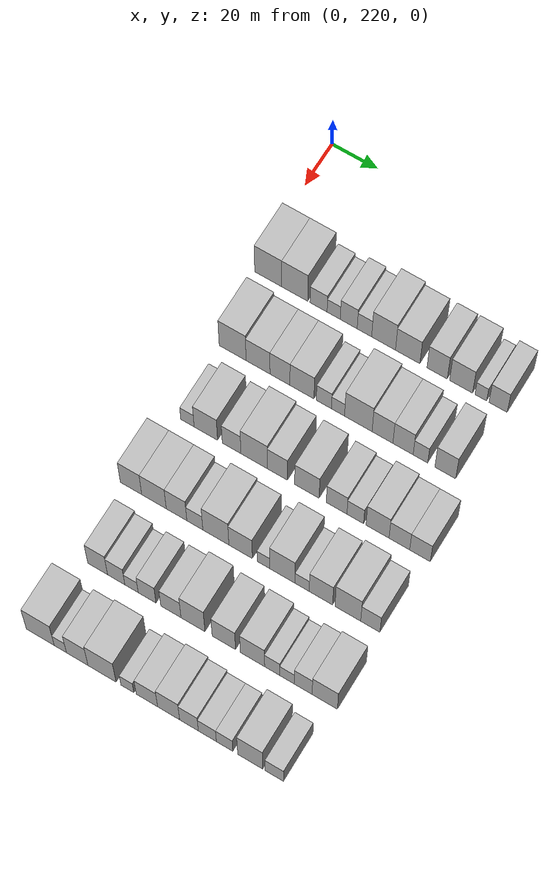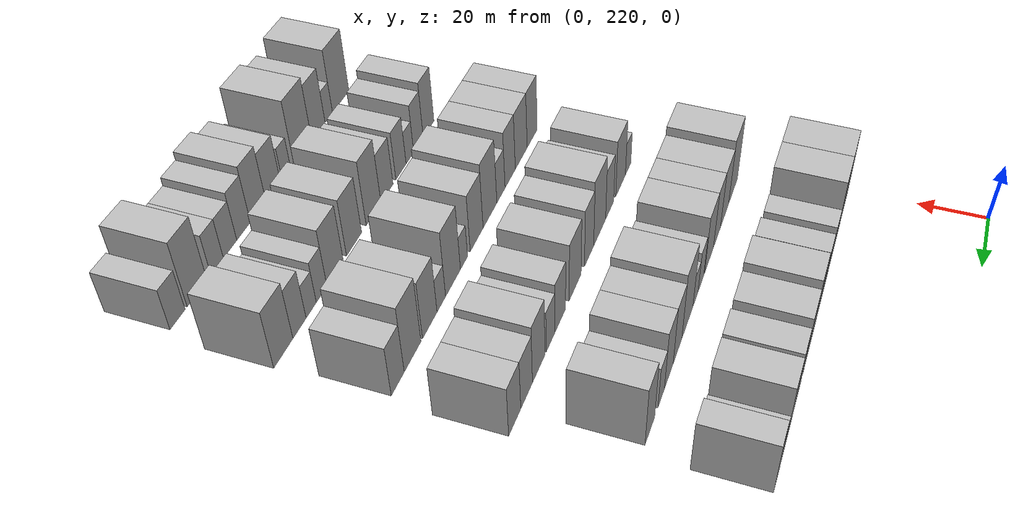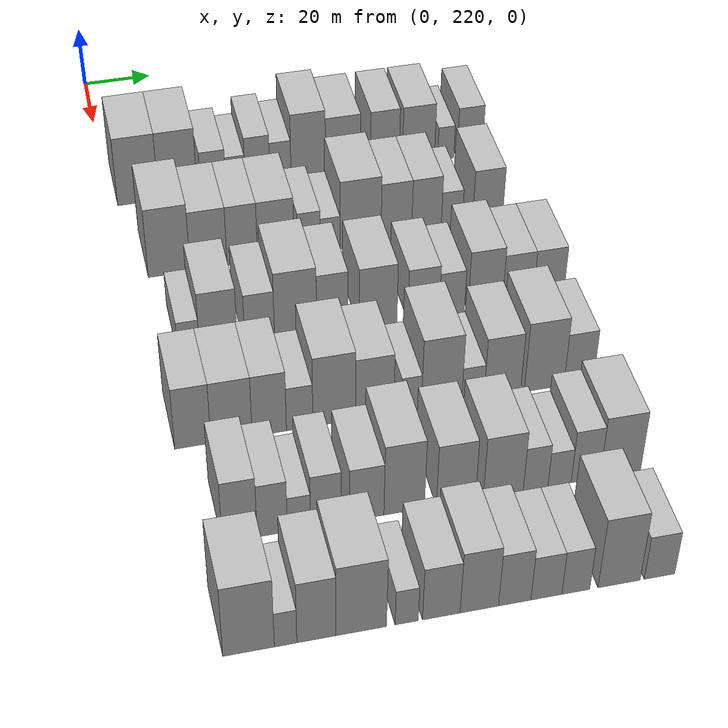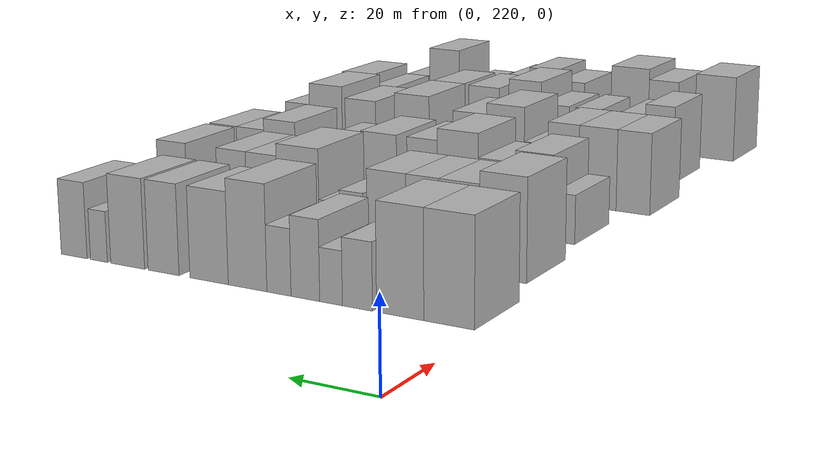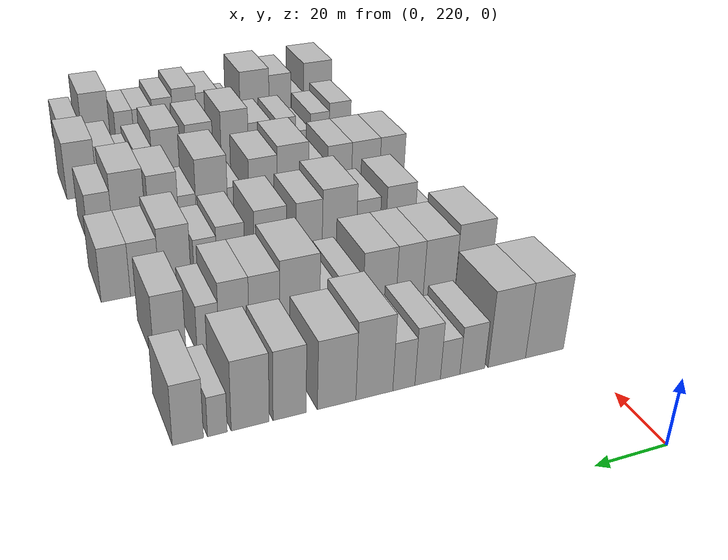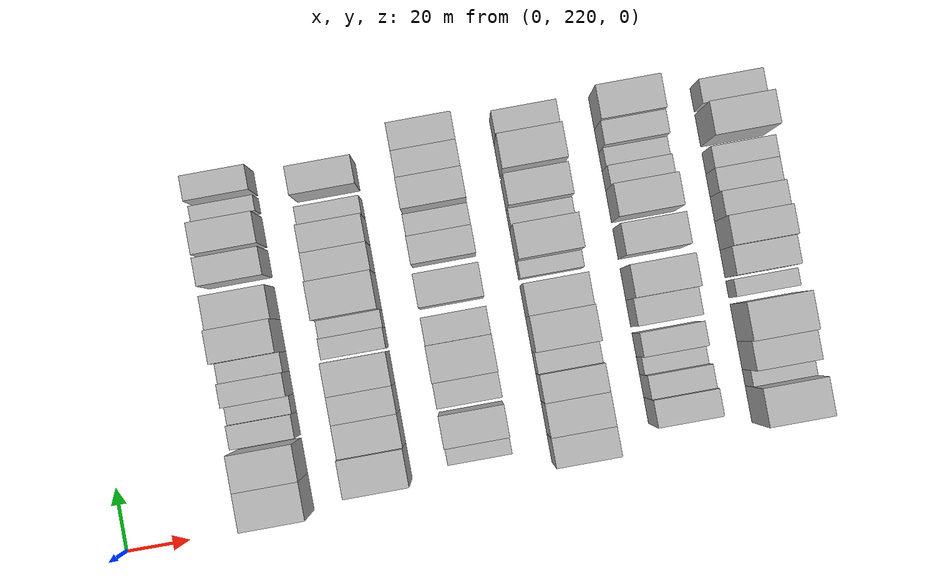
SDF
<sdf version="1.6">
 <world name="default">
  <model name="building_87">
   <static>1</static>
   <pose>50.0000 228.0372 0 0.000000 0.000000 0.000000</pose>
   <link name="link">
    <pose>0 0 12.00 0 0 0</pose>
    <collision name="collision"><geometry><box><size>20.0000 11.7464 24.0000</size></box></geometry></collision>
    <visual name="visual">
     <cast_shadows>0</cast_shadows>
     <geometry><box><size>20.0000 11.7464 24.0000</size></box></geometry>
     <material>
      <script>
       <uri>model://HANNAS_wall/materials/scripts</uri>
       <uri>model://HANNAS_wall/materials/textures</uri>
       <name>vrc/HANNAS_wall</name>
      </script>
     </material>
    </visual>
   </link>
  </model>
  <model name="building_88">
   <static>1</static>
   <pose>50.0000 239.5482 0 0.000000 0.000000 0.000000</pose>
   <link name="link">
    <pose>0 0 12.00 0 0 0</pose>
    <collision name="collision"><geometry><box><size>20.0000 11.2756 24.0000</size></box></geometry></collision>
    <visual name="visual">
     <cast_shadows>0</cast_shadows>
     <geometry><box><size>20.0000 11.2756 24.0000</size></box></geometry>
     <material>
      <script>
       <uri>model://HANNAS_wall/materials/scripts</uri>
       <uri>model://HANNAS_wall/materials/textures</uri>
       <name>vrc/HANNAS_wall</name>
      </script>
     </material>
    </visual>
   </link>
  </model>
  <model name="building_89">
   <static>1</static>
   <pose>50.0000 249.8658 0 0.000000 0.000000 0.000000</pose>
   <link name="link">
    <pose>0 0 7.50 0 0 0</pose>
    <collision name="collision"><geometry><box><size>20.0000 7.3597 15.0000</size></box></geometry></collision>
    <visual name="visual">
     <cast_shadows>0</cast_shadows>
     <geometry><box><size>20.0000 7.3597 15.0000</size></box></geometry>
     <material>
      <script>
       <uri>model://HANNAS_wall/materials/scripts</uri>
       <uri>model://HANNAS_wall/materials/textures</uri>
       <name>vrc/HANNAS_wall</name>
      </script>
     </material>
    </visual>
   </link>
  </model>
  <model name="building_90">
   <static>1</static>
   <pose>50.0000 256.3768 0 0.000000 0.000000 0.000000</pose>
   <link name="link">
    <pose>0 0 6.00 0 0 0</pose>
    <collision name="collision"><geometry><box><size>20.0000 5.6622 12.0000</size></box></geometry></collision>
    <visual name="visual">
     <cast_shadows>0</cast_shadows>
     <geometry><box><size>20.0000 5.6622 12.0000</size></box></geometry>
     <material>
      <script>
       <uri>model://HANNAS_wall/materials/scripts</uri>
       <uri>model://HANNAS_wall/materials/textures</uri>
       <name>vrc/HANNAS_wall</name>
      </script>
     </material>
    </visual>
   </link>
  </model>
  <model name="building_91">
   <static>1</static>
   <pose>50.0000 262.8489 0 0.000000 0.000000 0.000000</pose>
   <link name="link">
    <pose>0 0 9.00 0 0 0</pose>
    <collision name="collision"><geometry><box><size>20.0000 7.2819 18.0000</size></box></geometry></collision>
    <visual name="visual">
     <cast_shadows>0</cast_shadows>
     <geometry><box><size>20.0000 7.2819 18.0000</size></box></geometry>
     <material>
      <script>
       <uri>model://HANNAS_wall/materials/scripts</uri>
       <uri>model://HANNAS_wall/materials/textures</uri>
       <name>vrc/HANNAS_wall</name>
      </script>
     </material>
    </visual>
   </link>
  </model>
  <model name="building_92">
   <static>1</static>
   <pose>50.0000 269.6040 0 0.000000 0.000000 0.000000</pose>
   <link name="link">
    <pose>0 0 7.50 0 0 0</pose>
    <collision name="collision"><geometry><box><size>20.0000 6.2282 15.0000</size></box></geometry></collision>
    <visual name="visual">
     <cast_shadows>0</cast_shadows>
     <geometry><box><size>20.0000 6.2282 15.0000</size></box></geometry>
     <material>
      <script>
       <uri>model://HANNAS_wall/materials/scripts</uri>
       <uri>model://HANNAS_wall/materials/textures</uri>
       <name>vrc/HANNAS_wall</name>
      </script>
     </material>
    </visual>
   </link>
  </model>
  <model name="building_93">
   <static>1</static>
   <pose>50.0000 277.8182 0 0.000000 0.000000 0.000000</pose>
   <link name="link">
    <pose>0 0 12.00 0 0 0</pose>
    <collision name="collision"><geometry><box><size>20.0000 10.2004 24.0000</size></box></geometry></collision>
    <visual name="visual">
     <cast_shadows>0</cast_shadows>
     <geometry><box><size>20.0000 10.2004 24.0000</size></box></geometry>
     <material>
      <script>
       <uri>model://HANNAS_wall/materials/scripts</uri>
       <uri>model://HANNAS_wall/materials/textures</uri>
       <name>vrc/HANNAS_wall</name>
      </script>
     </material>
    </visual>
   </link>
  </model>
  <model name="building_94">
   <static>1</static>
   <pose>50.0000 288.1135 0 0.000000 0.000000 0.000000</pose>
   <link name="link">
    <pose>0 0 10.50 0 0 0</pose>
    <collision name="collision"><geometry><box><size>20.0000 10.3901 21.0000</size></box></geometry></collision>
    <visual name="visual">
     <cast_shadows>0</cast_shadows>
     <geometry><box><size>20.0000 10.3901 21.0000</size></box></geometry>
     <material>
      <script>
       <uri>model://HANNAS_wall/materials/scripts</uri>
       <uri>model://HANNAS_wall/materials/textures</uri>
       <name>vrc/HANNAS_wall</name>
      </script>
     </material>
    </visual>
   </link>
  </model>
  <model name="building_95">
   <static>1</static>
   <pose>50.0000 300.6220 0 0.000000 0.000000 0.000000</pose>
   <link name="link">
    <pose>0 0 10.50 0 0 0</pose>
    <collision name="collision"><geometry><box><size>20.0000 8.6270 21.0000</size></box></geometry></collision>
    <visual name="visual">
     <cast_shadows>0</cast_shadows>
     <geometry><box><size>20.0000 8.6270 21.0000</size></box></geometry>
     <material>
      <script>
       <uri>model://HANNAS_wall/materials/scripts</uri>
       <uri>model://HANNAS_wall/materials/textures</uri>
       <name>vrc/HANNAS_wall</name>
      </script>
     </material>
    </visual>
   </link>
  </model>
  <model name="building_96">
   <static>1</static>
   <pose>50.0000 310.7850 0 0.000000 0.000000 0.000000</pose>
   <link name="link">
    <pose>0 0 10.50 0 0 0</pose>
    <collision name="collision"><geometry><box><size>20.0000 9.6990 21.0000</size></box></geometry></collision>
    <visual name="visual">
     <cast_shadows>0</cast_shadows>
     <geometry><box><size>20.0000 9.6990 21.0000</size></box></geometry>
     <material>
      <script>
       <uri>model://HANNAS_wall/materials/scripts</uri>
       <uri>model://HANNAS_wall/materials/textures</uri>
       <name>vrc/HANNAS_wall</name>
      </script>
     </material>
    </visual>
   </link>
  </model>
  <model name="building_97">
   <static>1</static>
   <pose>50.0000 319.1039 0 0.000000 0.000000 0.000000</pose>
   <link name="link">
    <pose>0 0 6.00 0 0 0</pose>
    <collision name="collision"><geometry><box><size>20.0000 4.9386 12.0000</size></box></geometry></collision>
    <visual name="visual">
     <cast_shadows>0</cast_shadows>
     <geometry><box><size>20.0000 4.9386 12.0000</size></box></geometry>
     <material>
      <script>
       <uri>model://HANNAS_wall/materials/scripts</uri>
       <uri>model://HANNAS_wall/materials/textures</uri>
       <name>vrc/HANNAS_wall</name>
      </script>
     </material>
    </visual>
   </link>
  </model>
  <model name="building_98">
   <static>1</static>
   <pose>50.0000 326.4090 0 0.000000 0.000000 0.000000</pose>
   <link name="link">
    <pose>0 0 9.00 0 0 0</pose>
    <collision name="collision"><geometry><box><size>20.0000 7.6716 18.0000</size></box></geometry></collision>
    <visual name="visual">
     <cast_shadows>0</cast_shadows>
     <geometry><box><size>20.0000 7.6716 18.0000</size></box></geometry>
     <material>
      <script>
       <uri>model://HANNAS_wall/materials/scripts</uri>
       <uri>model://HANNAS_wall/materials/textures</uri>
       <name>vrc/HANNAS_wall</name>
      </script>
     </material>
    </visual>
   </link>
  </model>
  <model name="building_201">
   <static>1</static>
   <pose>82.0000 232.1351 0 0.000000 0.000000 0.000000</pose>
   <link name="link">
    <pose>0 0 12.00 0 0 0</pose>
    <collision name="collision"><geometry><box><size>20.0000 11.6030 24.0000</size></box></geometry></collision>
    <visual name="visual">
     <cast_shadows>0</cast_shadows>
     <geometry><box><size>20.0000 11.6030 24.0000</size></box></geometry>
     <material>
      <script>
       <uri>model://HANNAS_wall/materials/scripts</uri>
       <uri>model://HANNAS_wall/materials/textures</uri>
       <name>vrc/HANNAS_wall</name>
      </script>
     </material>
    </visual>
   </link>
  </model>
  <model name="building_202">
   <static>1</static>
   <pose>82.0000 243.0815 0 0.000000 0.000000 0.000000</pose>
   <link name="link">
    <pose>0 0 10.50 0 0 0</pose>
    <collision name="collision"><geometry><box><size>20.0000 10.2899 21.0000</size></box></geometry></collision>
    <visual name="visual">
     <cast_shadows>0</cast_shadows>
     <geometry><box><size>20.0000 10.2899 21.0000</size></box></geometry>
     <material>
      <script>
       <uri>model://HANNAS_wall/materials/scripts</uri>
       <uri>model://HANNAS_wall/materials/textures</uri>
       <name>vrc/HANNAS_wall</name>
      </script>
     </material>
    </visual>
   </link>
  </model>
  <model name="building_203">
   <static>1</static>
   <pose>82.0000 252.5067 0 0.000000 0.000000 0.000000</pose>
   <link name="link">
    <pose>0 0 10.50 0 0 0</pose>
    <collision name="collision"><geometry><box><size>20.0000 8.5605 21.0000</size></box></geometry></collision>
    <visual name="visual">
     <cast_shadows>0</cast_shadows>
     <geometry><box><size>20.0000 8.5605 21.0000</size></box></geometry>
     <material>
      <script>
       <uri>model://HANNAS_wall/materials/scripts</uri>
       <uri>model://HANNAS_wall/materials/textures</uri>
       <name>vrc/HANNAS_wall</name>
      </script>
     </material>
    </visual>
   </link>
  </model>
  <model name="building_204">
   <static>1</static>
   <pose>82.0000 261.9336 0 0.000000 0.000000 0.000000</pose>
   <link name="link">
    <pose>0 0 10.50 0 0 0</pose>
    <collision name="collision"><geometry><box><size>20.0000 10.2932 21.0000</size></box></geometry></collision>
    <visual name="visual">
     <cast_shadows>0</cast_shadows>
     <geometry><box><size>20.0000 10.2932 21.0000</size></box></geometry>
     <material>
      <script>
       <uri>model://HANNAS_wall/materials/scripts</uri>
       <uri>model://HANNAS_wall/materials/textures</uri>
       <name>vrc/HANNAS_wall</name>
      </script>
     </material>
    </visual>
   </link>
  </model>
  <model name="building_205">
   <static>1</static>
   <pose>82.0000 271.3000 0 0.000000 0.000000 0.000000</pose>
   <link name="link">
    <pose>0 0 7.50 0 0 0</pose>
    <collision name="collision"><geometry><box><size>20.0000 6.4396 15.0000</size></box></geometry></collision>
    <visual name="visual">
     <cast_shadows>0</cast_shadows>
     <geometry><box><size>20.0000 6.4396 15.0000</size></box></geometry>
     <material>
      <script>
       <uri>model://HANNAS_wall/materials/scripts</uri>
       <uri>model://HANNAS_wall/materials/textures</uri>
       <name>vrc/HANNAS_wall</name>
      </script>
     </material>
    </visual>
   </link>
  </model>
  <model name="building_206">
   <static>1</static>
   <pose>82.0000 277.3047 0 0.000000 0.000000 0.000000</pose>
   <link name="link">
    <pose>0 0 6.00 0 0 0</pose>
    <collision name="collision"><geometry><box><size>20.0000 5.5699 12.0000</size></box></geometry></collision>
    <visual name="visual">
     <cast_shadows>0</cast_shadows>
     <geometry><box><size>20.0000 5.5699 12.0000</size></box></geometry>
     <material>
      <script>
       <uri>model://HANNAS_wall/materials/scripts</uri>
       <uri>model://HANNAS_wall/materials/textures</uri>
       <name>vrc/HANNAS_wall</name>
      </script>
     </material>
    </visual>
   </link>
  </model>
  <model name="building_207">
   <static>1</static>
   <pose>82.0000 285.9365 0 0.000000 0.000000 0.000000</pose>
   <link name="link">
    <pose>0 0 12.00 0 0 0</pose>
    <collision name="collision"><geometry><box><size>20.0000 11.6936 24.0000</size></box></geometry></collision>
    <visual name="visual">
     <cast_shadows>0</cast_shadows>
     <geometry><box><size>20.0000 11.6936 24.0000</size></box></geometry>
     <material>
      <script>
       <uri>model://HANNAS_wall/materials/scripts</uri>
       <uri>model://HANNAS_wall/materials/textures</uri>
       <name>vrc/HANNAS_wall</name>
      </script>
     </material>
    </visual>
   </link>
  </model>
  <model name="building_208">
   <static>1</static>
   <pose>82.0000 296.1773 0 0.000000 0.000000 0.000000</pose>
   <link name="link">
    <pose>0 0 10.50 0 0 0</pose>
    <collision name="collision"><geometry><box><size>20.0000 8.7882 21.0000</size></box></geometry></collision>
    <visual name="visual">
     <cast_shadows>0</cast_shadows>
     <geometry><box><size>20.0000 8.7882 21.0000</size></box></geometry>
     <material>
      <script>
       <uri>model://HANNAS_wall/materials/scripts</uri>
       <uri>model://HANNAS_wall/materials/textures</uri>
       <name>vrc/HANNAS_wall</name>
      </script>
     </material>
    </visual>
   </link>
  </model>
  <model name="building_209">
   <static>1</static>
   <pose>82.0000 304.8426 0 0.000000 0.000000 0.000000</pose>
   <link name="link">
    <pose>0 0 10.50 0 0 0</pose>
    <collision name="collision"><geometry><box><size>20.0000 8.5423 21.0000</size></box></geometry></collision>
    <visual name="visual">
     <cast_shadows>0</cast_shadows>
     <geometry><box><size>20.0000 8.5423 21.0000</size></box></geometry>
     <material>
      <script>
       <uri>model://HANNAS_wall/materials/scripts</uri>
       <uri>model://HANNAS_wall/materials/textures</uri>
       <name>vrc/HANNAS_wall</name>
      </script>
     </material>
    </visual>
   </link>
  </model>
  <model name="building_210">
   <static>1</static>
   <pose>82.0000 312.1706 0 0.000000 0.000000 0.000000</pose>
   <link name="link">
    <pose>0 0 7.50 0 0 0</pose>
    <collision name="collision"><geometry><box><size>20.0000 6.1138 15.0000</size></box></geometry></collision>
    <visual name="visual">
     <cast_shadows>0</cast_shadows>
     <geometry><box><size>20.0000 6.1138 15.0000</size></box></geometry>
     <material>
      <script>
       <uri>model://HANNAS_wall/materials/scripts</uri>
       <uri>model://HANNAS_wall/materials/textures</uri>
       <name>vrc/HANNAS_wall</name>
      </script>
     </material>
    </visual>
   </link>
  </model>
  <model name="building_211">
   <static>1</static>
   <pose>82.0000 322.5946 0 0.000000 0.000000 0.000000</pose>
   <link name="link">
    <pose>0 0 10.50 0 0 0</pose>
    <collision name="collision"><geometry><box><size>20.0000 8.7343 21.0000</size></box></geometry></collision>
    <visual name="visual">
     <cast_shadows>0</cast_shadows>
     <geometry><box><size>20.0000 8.7343 21.0000</size></box></geometry>
     <material>
      <script>
       <uri>model://HANNAS_wall/materials/scripts</uri>
       <uri>model://HANNAS_wall/materials/textures</uri>
       <name>vrc/HANNAS_wall</name>
      </script>
     </material>
    </visual>
   </link>
  </model>
  <model name="building_320">
   <static>1</static>
   <pose>114.0000 232.3942 0 0.000000 0.000000 0.000000</pose>
   <link name="link">
    <pose>0 0 6.00 0 0 0</pose>
    <collision name="collision"><geometry><box><size>20.0000 5.7517 12.0000</size></box></geometry></collision>
    <visual name="visual">
     <cast_shadows>0</cast_shadows>
     <geometry><box><size>20.0000 5.7517 12.0000</size></box></geometry>
     <material>
      <script>
       <uri>model://HANNAS_wall/materials/scripts</uri>
       <uri>model://HANNAS_wall/materials/textures</uri>
       <name>vrc/HANNAS_wall</name>
      </script>
     </material>
    </visual>
   </link>
  </model>
  <model name="building_321">
   <static>1</static>
   <pose>114.0000 240.2944 0 0.000000 0.000000 0.000000</pose>
   <link name="link">
    <pose>0 0 10.50 0 0 0</pose>
    <collision name="collision"><geometry><box><size>20.0000 10.0488 21.0000</size></box></geometry></collision>
    <visual name="visual">
     <cast_shadows>0</cast_shadows>
     <geometry><box><size>20.0000 10.0488 21.0000</size></box></geometry>
     <material>
      <script>
       <uri>model://HANNAS_wall/materials/scripts</uri>
       <uri>model://HANNAS_wall/materials/textures</uri>
       <name>vrc/HANNAS_wall</name>
      </script>
     </material>
    </visual>
   </link>
  </model>
  <model name="building_322">
   <static>1</static>
   <pose>114.0000 251.2999 0 0.000000 0.000000 0.000000</pose>
   <link name="link">
    <pose>0 0 9.00 0 0 0</pose>
    <collision name="collision"><geometry><box><size>20.0000 7.9621 18.0000</size></box></geometry></collision>
    <visual name="visual">
     <cast_shadows>0</cast_shadows>
     <geometry><box><size>20.0000 7.9621 18.0000</size></box></geometry>
     <material>
      <script>
       <uri>model://HANNAS_wall/materials/scripts</uri>
       <uri>model://HANNAS_wall/materials/textures</uri>
       <name>vrc/HANNAS_wall</name>
      </script>
     </material>
    </visual>
   </link>
  </model>
  <model name="building_323">
   <static>1</static>
   <pose>114.0000 260.9401 0 0.000000 0.000000 0.000000</pose>
   <link name="link">
    <pose>0 0 12.00 0 0 0</pose>
    <collision name="collision"><geometry><box><size>20.0000 11.3183 24.0000</size></box></geometry></collision>
    <visual name="visual">
     <cast_shadows>0</cast_shadows>
     <geometry><box><size>20.0000 11.3183 24.0000</size></box></geometry>
     <material>
      <script>
       <uri>model://HANNAS_wall/materials/scripts</uri>
       <uri>model://HANNAS_wall/materials/textures</uri>
       <name>vrc/HANNAS_wall</name>
      </script>
     </material>
    </visual>
   </link>
  </model>
  <model name="building_324">
   <static>1</static>
   <pose>114.0000 270.8423 0 0.000000 0.000000 0.000000</pose>
   <link name="link">
    <pose>0 0 10.50 0 0 0</pose>
    <collision name="collision"><geometry><box><size>20.0000 8.4861 21.0000</size></box></geometry></collision>
    <visual name="visual">
     <cast_shadows>0</cast_shadows>
     <geometry><box><size>20.0000 8.4861 21.0000</size></box></geometry>
     <material>
      <script>
       <uri>model://HANNAS_wall/materials/scripts</uri>
       <uri>model://HANNAS_wall/materials/textures</uri>
       <name>vrc/HANNAS_wall</name>
      </script>
     </material>
    </visual>
   </link>
  </model>
  <model name="building_325">
   <static>1</static>
   <pose>114.0000 283.2684 0 0.000000 0.000000 0.000000</pose>
   <link name="link">
    <pose>0 0 10.50 0 0 0</pose>
    <collision name="collision"><geometry><box><size>20.0000 10.3661 21.0000</size></box></geometry></collision>
    <visual name="visual">
     <cast_shadows>0</cast_shadows>
     <geometry><box><size>20.0000 10.3661 21.0000</size></box></geometry>
     <material>
      <script>
       <uri>model://HANNAS_wall/materials/scripts</uri>
       <uri>model://HANNAS_wall/materials/textures</uri>
       <name>vrc/HANNAS_wall</name>
      </script>
     </material>
    </visual>
   </link>
  </model>
  <model name="building_326">
   <static>1</static>
   <pose>114.0000 295.7923 0 0.000000 0.000000 0.000000</pose>
   <link name="link">
    <pose>0 0 9.00 0 0 0</pose>
    <collision name="collision"><geometry><box><size>20.0000 8.6818 18.0000</size></box></geometry></collision>
    <visual name="visual">
     <cast_shadows>0</cast_shadows>
     <geometry><box><size>20.0000 8.6818 18.0000</size></box></geometry>
     <material>
      <script>
       <uri>model://HANNAS_wall/materials/scripts</uri>
       <uri>model://HANNAS_wall/materials/textures</uri>
       <name>vrc/HANNAS_wall</name>
      </script>
     </material>
    </visual>
   </link>
  </model>
  <model name="building_327">
   <static>1</static>
   <pose>114.0000 303.6245 0 0.000000 0.000000 0.000000</pose>
   <link name="link">
    <pose>0 0 7.50 0 0 0</pose>
    <collision name="collision"><geometry><box><size>20.0000 6.9824 15.0000</size></box></geometry></collision>
    <visual name="visual">
     <cast_shadows>0</cast_shadows>
     <geometry><box><size>20.0000 6.9824 15.0000</size></box></geometry>
     <material>
      <script>
       <uri>model://HANNAS_wall/materials/scripts</uri>
       <uri>model://HANNAS_wall/materials/textures</uri>
       <name>vrc/HANNAS_wall</name>
      </script>
     </material>
    </visual>
   </link>
  </model>
  <model name="building_328">
   <static>1</static>
   <pose>114.0000 312.9196 0 0.000000 0.000000 0.000000</pose>
   <link name="link">
    <pose>0 0 10.50 0 0 0</pose>
    <collision name="collision"><geometry><box><size>20.0000 9.6079 21.0000</size></box></geometry></collision>
    <visual name="visual">
     <cast_shadows>0</cast_shadows>
     <geometry><box><size>20.0000 9.6079 21.0000</size></box></geometry>
     <material>
      <script>
       <uri>model://HANNAS_wall/materials/scripts</uri>
       <uri>model://HANNAS_wall/materials/textures</uri>
       <name>vrc/HANNAS_wall</name>
      </script>
     </material>
    </visual>
   </link>
  </model>
  <model name="building_329">
   <static>1</static>
   <pose>114.0000 322.0286 0 0.000000 0.000000 0.000000</pose>
   <link name="link">
    <pose>0 0 9.00 0 0 0</pose>
    <collision name="collision"><geometry><box><size>20.0000 8.6103 18.0000</size></box></geometry></collision>
    <visual name="visual">
     <cast_shadows>0</cast_shadows>
     <geometry><box><size>20.0000 8.6103 18.0000</size></box></geometry>
     <material>
      <script>
       <uri>model://HANNAS_wall/materials/scripts</uri>
       <uri>model://HANNAS_wall/materials/textures</uri>
       <name>vrc/HANNAS_wall</name>
      </script>
     </material>
    </visual>
   </link>
  </model>
  <model name="building_330">
   <static>1</static>
   <pose>114.0000 330.6211 0 0.000000 0.000000 0.000000</pose>
   <link name="link">
    <pose>0 0 9.00 0 0 0</pose>
    <collision name="collision"><geometry><box><size>20.0000 8.5748 18.0000</size></box></geometry></collision>
    <visual name="visual">
     <cast_shadows>0</cast_shadows>
     <geometry><box><size>20.0000 8.5748 18.0000</size></box></geometry>
     <material>
      <script>
       <uri>model://HANNAS_wall/materials/scripts</uri>
       <uri>model://HANNAS_wall/materials/textures</uri>
       <name>vrc/HANNAS_wall</name>
      </script>
     </material>
    </visual>
   </link>
  </model>
  <model name="building_439">
   <static>1</static>
   <pose>146.0000 228.2184 0 0.000000 0.000000 0.000000</pose>
   <link name="link">
    <pose>0 0 10.50 0 0 0</pose>
    <collision name="collision"><geometry><box><size>20.0000 9.1493 21.0000</size></box></geometry></collision>
    <visual name="visual">
     <cast_shadows>0</cast_shadows>
     <geometry><box><size>20.0000 9.1493 21.0000</size></box></geometry>
     <material>
      <script>
       <uri>model://HANNAS_wall/materials/scripts</uri>
       <uri>model://HANNAS_wall/materials/textures</uri>
       <name>vrc/HANNAS_wall</name>
      </script>
     </material>
    </visual>
   </link>
  </model>
  <model name="building_440">
   <static>1</static>
   <pose>146.0000 238.0206 0 0.000000 0.000000 0.000000</pose>
   <link name="link">
    <pose>0 0 10.50 0 0 0</pose>
    <collision name="collision"><geometry><box><size>20.0000 10.4551 21.0000</size></box></geometry></collision>
    <visual name="visual">
     <cast_shadows>0</cast_shadows>
     <geometry><box><size>20.0000 10.4551 21.0000</size></box></geometry>
     <material>
      <script>
       <uri>model://HANNAS_wall/materials/scripts</uri>
       <uri>model://HANNAS_wall/materials/textures</uri>
       <name>vrc/HANNAS_wall</name>
      </script>
     </material>
    </visual>
   </link>
  </model>
  <model name="building_441">
   <static>1</static>
   <pose>146.0000 247.6208 0 0.000000 0.000000 0.000000</pose>
   <link name="link">
    <pose>0 0 10.50 0 0 0</pose>
    <collision name="collision"><geometry><box><size>20.0000 8.7454 21.0000</size></box></geometry></collision>
    <visual name="visual">
     <cast_shadows>0</cast_shadows>
     <geometry><box><size>20.0000 8.7454 21.0000</size></box></geometry>
     <material>
      <script>
       <uri>model://HANNAS_wall/materials/scripts</uri>
       <uri>model://HANNAS_wall/materials/textures</uri>
       <name>vrc/HANNAS_wall</name>
      </script>
     </material>
    </visual>
   </link>
  </model>
  <model name="building_442">
   <static>1</static>
   <pose>146.0000 255.3818 0 0.000000 0.000000 0.000000</pose>
   <link name="link">
    <pose>0 0 7.50 0 0 0</pose>
    <collision name="collision"><geometry><box><size>20.0000 6.7765 15.0000</size></box></geometry></collision>
    <visual name="visual">
     <cast_shadows>0</cast_shadows>
     <geometry><box><size>20.0000 6.7765 15.0000</size></box></geometry>
     <material>
      <script>
       <uri>model://HANNAS_wall/materials/scripts</uri>
       <uri>model://HANNAS_wall/materials/textures</uri>
       <name>vrc/HANNAS_wall</name>
      </script>
     </material>
    </visual>
   </link>
  </model>
  <model name="building_443">
   <static>1</static>
   <pose>146.0000 264.2741 0 0.000000 0.000000 0.000000</pose>
   <link name="link">
    <pose>0 0 12.00 0 0 0</pose>
    <collision name="collision"><geometry><box><size>20.0000 11.0081 24.0000</size></box></geometry></collision>
    <visual name="visual">
     <cast_shadows>0</cast_shadows>
     <geometry><box><size>20.0000 11.0081 24.0000</size></box></geometry>
     <material>
      <script>
       <uri>model://HANNAS_wall/materials/scripts</uri>
       <uri>model://HANNAS_wall/materials/textures</uri>
       <name>vrc/HANNAS_wall</name>
      </script>
     </material>
    </visual>
   </link>
  </model>
  <model name="building_444">
   <static>1</static>
   <pose>146.0000 274.7290 0 0.000000 0.000000 0.000000</pose>
   <link name="link">
    <pose>0 0 10.50 0 0 0</pose>
    <collision name="collision"><geometry><box><size>20.0000 9.9018 21.0000</size></box></geometry></collision>
    <visual name="visual">
     <cast_shadows>0</cast_shadows>
     <geometry><box><size>20.0000 9.9018 21.0000</size></box></geometry>
     <material>
      <script>
       <uri>model://HANNAS_wall/materials/scripts</uri>
       <uri>model://HANNAS_wall/materials/textures</uri>
       <name>vrc/HANNAS_wall</name>
      </script>
     </material>
    </visual>
   </link>
  </model>
  <model name="building_445">
   <static>1</static>
   <pose>146.0000 284.3114 0 0.000000 0.000000 0.000000</pose>
   <link name="link">
    <pose>0 0 6.00 0 0 0</pose>
    <collision name="collision"><geometry><box><size>20.0000 5.2630 12.0000</size></box></geometry></collision>
    <visual name="visual">
     <cast_shadows>0</cast_shadows>
     <geometry><box><size>20.0000 5.2630 12.0000</size></box></geometry>
     <material>
      <script>
       <uri>model://HANNAS_wall/materials/scripts</uri>
       <uri>model://HANNAS_wall/materials/textures</uri>
       <name>vrc/HANNAS_wall</name>
      </script>
     </material>
    </visual>
   </link>
  </model>
  <model name="building_446">
   <static>1</static>
   <pose>146.0000 292.2428 0 0.000000 0.000000 0.000000</pose>
   <link name="link">
    <pose>0 0 12.00 0 0 0</pose>
    <collision name="collision"><geometry><box><size>20.0000 10.5998 24.0000</size></box></geometry></collision>
    <visual name="visual">
     <cast_shadows>0</cast_shadows>
     <geometry><box><size>20.0000 10.5998 24.0000</size></box></geometry>
     <material>
      <script>
       <uri>model://HANNAS_wall/materials/scripts</uri>
       <uri>model://HANNAS_wall/materials/textures</uri>
       <name>vrc/HANNAS_wall</name>
      </script>
     </material>
    </visual>
   </link>
  </model>
  <model name="building_447">
   <static>1</static>
   <pose>146.0000 300.5028 0 0.000000 0.000000 0.000000</pose>
   <link name="link">
    <pose>0 0 6.00 0 0 0</pose>
    <collision name="collision"><geometry><box><size>20.0000 5.9201 12.0000</size></box></geometry></collision>
    <visual name="visual">
     <cast_shadows>0</cast_shadows>
     <geometry><box><size>20.0000 5.9201 12.0000</size></box></geometry>
     <material>
      <script>
       <uri>model://HANNAS_wall/materials/scripts</uri>
       <uri>model://HANNAS_wall/materials/textures</uri>
       <name>vrc/HANNAS_wall</name>
      </script>
     </material>
    </visual>
   </link>
  </model>
  <model name="building_448">
   <static>1</static>
   <pose>146.0000 308.3286 0 0.000000 0.000000 0.000000</pose>
   <link name="link">
    <pose>0 0 10.50 0 0 0</pose>
    <collision name="collision"><geometry><box><size>20.0000 9.7316 21.0000</size></box></geometry></collision>
    <visual name="visual">
     <cast_shadows>0</cast_shadows>
     <geometry><box><size>20.0000 9.7316 21.0000</size></box></geometry>
     <material>
      <script>
       <uri>model://HANNAS_wall/materials/scripts</uri>
       <uri>model://HANNAS_wall/materials/textures</uri>
       <name>vrc/HANNAS_wall</name>
      </script>
     </material>
    </visual>
   </link>
  </model>
  <model name="building_449">
   <static>1</static>
   <pose>146.0000 319.5109 0 0.000000 0.000000 0.000000</pose>
   <link name="link">
    <pose>0 0 12.00 0 0 0</pose>
    <collision name="collision"><geometry><box><size>20.0000 10.6329 24.0000</size></box></geometry></collision>
    <visual name="visual">
     <cast_shadows>0</cast_shadows>
     <geometry><box><size>20.0000 10.6329 24.0000</size></box></geometry>
     <material>
      <script>
       <uri>model://HANNAS_wall/materials/scripts</uri>
       <uri>model://HANNAS_wall/materials/textures</uri>
       <name>vrc/HANNAS_wall</name>
      </script>
     </material>
    </visual>
   </link>
  </model>
  <model name="building_450">
   <static>1</static>
   <pose>146.0000 328.8081 0 0.000000 0.000000 0.000000</pose>
   <link name="link">
    <pose>0 0 9.00 0 0 0</pose>
    <collision name="collision"><geometry><box><size>20.0000 7.9616 18.0000</size></box></geometry></collision>
    <visual name="visual">
     <cast_shadows>0</cast_shadows>
     <geometry><box><size>20.0000 7.9616 18.0000</size></box></geometry>
     <material>
      <script>
       <uri>model://HANNAS_wall/materials/scripts</uri>
       <uri>model://HANNAS_wall/materials/textures</uri>
       <name>vrc/HANNAS_wall</name>
      </script>
     </material>
    </visual>
   </link>
  </model>
  <model name="building_556">
   <static>1</static>
   <pose>178.0000 234.2522 0 0.000000 0.000000 0.000000</pose>
   <link name="link">
    <pose>0 0 10.50 0 0 0</pose>
    <collision name="collision"><geometry><box><size>20.0000 8.4125 21.0000</size></box></geometry></collision>
    <visual name="visual">
     <cast_shadows>0</cast_shadows>
     <geometry><box><size>20.0000 8.4125 21.0000</size></box></geometry>
     <material>
      <script>
       <uri>model://HANNAS_wall/materials/scripts</uri>
       <uri>model://HANNAS_wall/materials/textures</uri>
       <name>vrc/HANNAS_wall</name>
      </script>
     </material>
    </visual>
   </link>
  </model>
  <model name="building_557">
   <static>1</static>
   <pose>178.0000 242.1139 0 0.000000 0.000000 0.000000</pose>
   <link name="link">
    <pose>0 0 9.00 0 0 0</pose>
    <collision name="collision"><geometry><box><size>20.0000 7.3108 18.0000</size></box></geometry></collision>
    <visual name="visual">
     <cast_shadows>0</cast_shadows>
     <geometry><box><size>20.0000 7.3108 18.0000</size></box></geometry>
     <material>
      <script>
       <uri>model://HANNAS_wall/materials/scripts</uri>
       <uri>model://HANNAS_wall/materials/textures</uri>
       <name>vrc/HANNAS_wall</name>
      </script>
     </material>
    </visual>
   </link>
  </model>
  <model name="building_558">
   <static>1</static>
   <pose>178.0000 248.5913 0 0.000000 0.000000 0.000000</pose>
   <link name="link">
    <pose>0 0 6.00 0 0 0</pose>
    <collision name="collision"><geometry><box><size>20.0000 5.6441 12.0000</size></box></geometry></collision>
    <visual name="visual">
     <cast_shadows>0</cast_shadows>
     <geometry><box><size>20.0000 5.6441 12.0000</size></box></geometry>
     <material>
      <script>
       <uri>model://HANNAS_wall/materials/scripts</uri>
       <uri>model://HANNAS_wall/materials/textures</uri>
       <name>vrc/HANNAS_wall</name>
      </script>
     </material>
    </visual>
   </link>
  </model>
  <model name="building_559">
   <static>1</static>
   <pose>178.0000 255.1631 0 0.000000 0.000000 0.000000</pose>
   <link name="link">
    <pose>0 0 9.00 0 0 0</pose>
    <collision name="collision"><geometry><box><size>20.0000 7.4996 18.0000</size></box></geometry></collision>
    <visual name="visual">
     <cast_shadows>0</cast_shadows>
     <geometry><box><size>20.0000 7.4996 18.0000</size></box></geometry>
     <material>
      <script>
       <uri>model://HANNAS_wall/materials/scripts</uri>
       <uri>model://HANNAS_wall/materials/textures</uri>
       <name>vrc/HANNAS_wall</name>
      </script>
     </material>
    </visual>
   </link>
  </model>
  <model name="building_560">
   <static>1</static>
   <pose>178.0000 265.1644 0 0.000000 0.000000 0.000000</pose>
   <link name="link">
    <pose>0 0 9.00 0 0 0</pose>
    <collision name="collision"><geometry><box><size>20.0000 8.5028 18.0000</size></box></geometry></collision>
    <visual name="visual">
     <cast_shadows>0</cast_shadows>
     <geometry><box><size>20.0000 8.5028 18.0000</size></box></geometry>
     <material>
      <script>
       <uri>model://HANNAS_wall/materials/scripts</uri>
       <uri>model://HANNAS_wall/materials/textures</uri>
       <name>vrc/HANNAS_wall</name>
      </script>
     </material>
    </visual>
   </link>
  </model>
  <model name="building_561">
   <static>1</static>
   <pose>178.0000 274.4256 0 0.000000 0.000000 0.000000</pose>
   <link name="link">
    <pose>0 0 12.00 0 0 0</pose>
    <collision name="collision"><geometry><box><size>20.0000 10.0197 24.0000</size></box></geometry></collision>
    <visual name="visual">
     <cast_shadows>0</cast_shadows>
     <geometry><box><size>20.0000 10.0197 24.0000</size></box></geometry>
     <material>
      <script>
       <uri>model://HANNAS_wall/materials/scripts</uri>
       <uri>model://HANNAS_wall/materials/textures</uri>
       <name>vrc/HANNAS_wall</name>
      </script>
     </material>
    </visual>
   </link>
  </model>
  <model name="building_562">
   <static>1</static>
   <pose>178.0000 287.3109 0 0.000000 0.000000 0.000000</pose>
   <link name="link">
    <pose>0 0 10.50 0 0 0</pose>
    <collision name="collision"><geometry><box><size>20.0000 9.7510 21.0000</size></box></geometry></collision>
    <visual name="visual">
     <cast_shadows>0</cast_shadows>
     <geometry><box><size>20.0000 9.7510 21.0000</size></box></geometry>
     <material>
      <script>
       <uri>model://HANNAS_wall/materials/scripts</uri>
       <uri>model://HANNAS_wall/materials/textures</uri>
       <name>vrc/HANNAS_wall</name>
      </script>
     </material>
    </visual>
   </link>
  </model>
  <model name="building_563">
   <static>1</static>
   <pose>178.0000 299.2274 0 0.000000 0.000000 0.000000</pose>
   <link name="link">
    <pose>0 0 10.50 0 0 0</pose>
    <collision name="collision"><geometry><box><size>20.0000 10.0820 21.0000</size></box></geometry></collision>
    <visual name="visual">
     <cast_shadows>0</cast_shadows>
     <geometry><box><size>20.0000 10.0820 21.0000</size></box></geometry>
     <material>
      <script>
       <uri>model://HANNAS_wall/materials/scripts</uri>
       <uri>model://HANNAS_wall/materials/textures</uri>
       <name>vrc/HANNAS_wall</name>
      </script>
     </material>
    </visual>
   </link>
  </model>
  <model name="building_564">
   <static>1</static>
   <pose>178.0000 307.4092 0 0.000000 0.000000 0.000000</pose>
   <link name="link">
    <pose>0 0 7.50 0 0 0</pose>
    <collision name="collision"><geometry><box><size>20.0000 6.2815 15.0000</size></box></geometry></collision>
    <visual name="visual">
     <cast_shadows>0</cast_shadows>
     <geometry><box><size>20.0000 6.2815 15.0000</size></box></geometry>
     <material>
      <script>
       <uri>model://HANNAS_wall/materials/scripts</uri>
       <uri>model://HANNAS_wall/materials/textures</uri>
       <name>vrc/HANNAS_wall</name>
      </script>
     </material>
    </visual>
   </link>
  </model>
  <model name="building_565">
   <static>1</static>
   <pose>178.0000 313.5026 0 0.000000 0.000000 0.000000</pose>
   <link name="link">
    <pose>0 0 6.00 0 0 0</pose>
    <collision name="collision"><geometry><box><size>20.0000 5.9055 12.0000</size></box></geometry></collision>
    <visual name="visual">
     <cast_shadows>0</cast_shadows>
     <geometry><box><size>20.0000 5.9055 12.0000</size></box></geometry>
     <material>
      <script>
       <uri>model://HANNAS_wall/materials/scripts</uri>
       <uri>model://HANNAS_wall/materials/textures</uri>
       <name>vrc/HANNAS_wall</name>
      </script>
     </material>
    </visual>
   </link>
  </model>
  <model name="building_566">
   <static>1</static>
   <pose>178.0000 320.1620 0 0.000000 0.000000 0.000000</pose>
   <link name="link">
    <pose>0 0 9.00 0 0 0</pose>
    <collision name="collision"><geometry><box><size>20.0000 7.4133 18.0000</size></box></geometry></collision>
    <visual name="visual">
     <cast_shadows>0</cast_shadows>
     <geometry><box><size>20.0000 7.4133 18.0000</size></box></geometry>
     <material>
      <script>
       <uri>model://HANNAS_wall/materials/scripts</uri>
       <uri>model://HANNAS_wall/materials/textures</uri>
       <name>vrc/HANNAS_wall</name>
      </script>
     </material>
    </visual>
   </link>
  </model>
  <model name="building_567">
   <static>1</static>
   <pose>178.0000 329.0741 0 0.000000 0.000000 0.000000</pose>
   <link name="link">
    <pose>0 0 10.50 0 0 0</pose>
    <collision name="collision"><geometry><box><size>20.0000 10.4110 21.0000</size></box></geometry></collision>
    <visual name="visual">
     <cast_shadows>0</cast_shadows>
     <geometry><box><size>20.0000 10.4110 21.0000</size></box></geometry>
     <material>
      <script>
       <uri>model://HANNAS_wall/materials/scripts</uri>
       <uri>model://HANNAS_wall/materials/textures</uri>
       <name>vrc/HANNAS_wall</name>
      </script>
     </material>
    </visual>
   </link>
  </model>
  <model name="building_667">
   <static>1</static>
   <pose>210.0000 230.4338 0 0.000000 0.000000 0.000000</pose>
   <link name="link">
    <pose>0 0 12.00 0 0 0</pose>
    <collision name="collision"><geometry><box><size>20.0000 11.7771 24.0000</size></box></geometry></collision>
    <visual name="visual">
     <cast_shadows>0</cast_shadows>
     <geometry><box><size>20.0000 11.7771 24.0000</size></box></geometry>
     <material>
      <script>
       <uri>model://HANNAS_wall/materials/scripts</uri>
       <uri>model://HANNAS_wall/materials/textures</uri>
       <name>vrc/HANNAS_wall</name>
      </script>
     </material>
    </visual>
   </link>
  </model>
  <model name="building_668">
   <static>1</static>
   <pose>210.0000 238.9030 0 0.000000 0.000000 0.000000</pose>
   <link name="link">
    <pose>0 0 6.00 0 0 0</pose>
    <collision name="collision"><geometry><box><size>20.0000 5.1614 12.0000</size></box></geometry></collision>
    <visual name="visual">
     <cast_shadows>0</cast_shadows>
     <geometry><box><size>20.0000 5.1614 12.0000</size></box></geometry>
     <material>
      <script>
       <uri>model://HANNAS_wall/materials/scripts</uri>
       <uri>model://HANNAS_wall/materials/textures</uri>
       <name>vrc/HANNAS_wall</name>
      </script>
     </material>
    </visual>
   </link>
  </model>
  <model name="building_669">
   <static>1</static>
   <pose>210.0000 246.0022 0 0.000000 0.000000 0.000000</pose>
   <link name="link">
    <pose>0 0 10.50 0 0 0</pose>
    <collision name="collision"><geometry><box><size>20.0000 9.0370 21.0000</size></box></geometry></collision>
    <visual name="visual">
     <cast_shadows>0</cast_shadows>
     <geometry><box><size>20.0000 9.0370 21.0000</size></box></geometry>
     <material>
      <script>
       <uri>model://HANNAS_wall/materials/scripts</uri>
       <uri>model://HANNAS_wall/materials/textures</uri>
       <name>vrc/HANNAS_wall</name>
      </script>
     </material>
    </visual>
   </link>
  </model>
  <model name="building_670">
   <static>1</static>
   <pose>210.0000 256.4075 0 0.000000 0.000000 0.000000</pose>
   <link name="link">
    <pose>0 0 12.00 0 0 0</pose>
    <collision name="collision"><geometry><box><size>20.0000 11.7736 24.0000</size></box></geometry></collision>
    <visual name="visual">
     <cast_shadows>0</cast_shadows>
     <geometry><box><size>20.0000 11.7736 24.0000</size></box></geometry>
     <material>
      <script>
       <uri>model://HANNAS_wall/materials/scripts</uri>
       <uri>model://HANNAS_wall/materials/textures</uri>
       <name>vrc/HANNAS_wall</name>
      </script>
     </material>
    </visual>
   </link>
  </model>
  <model name="building_671">
   <static>1</static>
   <pose>210.0000 267.0040 0 0.000000 0.000000 0.000000</pose>
   <link name="link">
    <pose>0 0 6.00 0 0 0</pose>
    <collision name="collision"><geometry><box><size>20.0000 5.4194 12.0000</size></box></geometry></collision>
    <visual name="visual">
     <cast_shadows>0</cast_shadows>
     <geometry><box><size>20.0000 5.4194 12.0000</size></box></geometry>
     <material>
      <script>
       <uri>model://HANNAS_wall/materials/scripts</uri>
       <uri>model://HANNAS_wall/materials/textures</uri>
       <name>vrc/HANNAS_wall</name>
      </script>
     </material>
    </visual>
   </link>
  </model>
  <model name="building_672">
   <static>1</static>
   <pose>210.0000 275.1508 0 0.000000 0.000000 0.000000</pose>
   <link name="link">
    <pose>0 0 9.00 0 0 0</pose>
    <collision name="collision"><geometry><box><size>20.0000 8.8742 18.0000</size></box></geometry></collision>
    <visual name="visual">
     <cast_shadows>0</cast_shadows>
     <geometry><box><size>20.0000 8.8742 18.0000</size></box></geometry>
     <material>
      <script>
       <uri>model://HANNAS_wall/materials/scripts</uri>
       <uri>model://HANNAS_wall/materials/textures</uri>
       <name>vrc/HANNAS_wall</name>
      </script>
     </material>
    </visual>
   </link>
  </model>
  <model name="building_673">
   <static>1</static>
   <pose>210.0000 284.1566 0 0.000000 0.000000 0.000000</pose>
   <link name="link">
    <pose>0 0 10.50 0 0 0</pose>
    <collision name="collision"><geometry><box><size>20.0000 9.1375 21.0000</size></box></geometry></collision>
    <visual name="visual">
     <cast_shadows>0</cast_shadows>
     <geometry><box><size>20.0000 9.1375 21.0000</size></box></geometry>
     <material>
      <script>
       <uri>model://HANNAS_wall/materials/scripts</uri>
       <uri>model://HANNAS_wall/materials/textures</uri>
       <name>vrc/HANNAS_wall</name>
      </script>
     </material>
    </visual>
   </link>
  </model>
  <model name="building_674">
   <static>1</static>
   <pose>210.0000 292.5997 0 0.000000 0.000000 0.000000</pose>
   <link name="link">
    <pose>0 0 9.00 0 0 0</pose>
    <collision name="collision"><geometry><box><size>20.0000 7.7486 18.0000</size></box></geometry></collision>
    <visual name="visual">
     <cast_shadows>0</cast_shadows>
     <geometry><box><size>20.0000 7.7486 18.0000</size></box></geometry>
     <material>
      <script>
       <uri>model://HANNAS_wall/materials/scripts</uri>
       <uri>model://HANNAS_wall/materials/textures</uri>
       <name>vrc/HANNAS_wall</name>
      </script>
     </material>
    </visual>
   </link>
  </model>
  <model name="building_675">
   <static>1</static>
   <pose>210.0000 300.1828 0 0.000000 0.000000 0.000000</pose>
   <link name="link">
    <pose>0 0 7.50 0 0 0</pose>
    <collision name="collision"><geometry><box><size>20.0000 7.4176 15.0000</size></box></geometry></collision>
    <visual name="visual">
     <cast_shadows>0</cast_shadows>
     <geometry><box><size>20.0000 7.4176 15.0000</size></box></geometry>
     <material>
      <script>
       <uri>model://HANNAS_wall/materials/scripts</uri>
       <uri>model://HANNAS_wall/materials/textures</uri>
       <name>vrc/HANNAS_wall</name>
      </script>
     </material>
    </visual>
   </link>
  </model>
  <model name="building_676">
   <static>1</static>
   <pose>210.0000 307.2782 0 0.000000 0.000000 0.000000</pose>
   <link name="link">
    <pose>0 0 7.50 0 0 0</pose>
    <collision name="collision"><geometry><box><size>20.0000 6.7732 15.0000</size></box></geometry></collision>
    <visual name="visual">
     <cast_shadows>0</cast_shadows>
     <geometry><box><size>20.0000 6.7732 15.0000</size></box></geometry>
     <material>
      <script>
       <uri>model://HANNAS_wall/materials/scripts</uri>
       <uri>model://HANNAS_wall/materials/textures</uri>
       <name>vrc/HANNAS_wall</name>
      </script>
     </material>
    </visual>
   </link>
  </model>
  <model name="building_677">
   <static>1</static>
   <pose>210.0000 317.7974 0 0.000000 0.000000 0.000000</pose>
   <link name="link">
    <pose>0 0 12.00 0 0 0</pose>
    <collision name="collision"><geometry><box><size>20.0000 10.2652 24.0000</size></box></geometry></collision>
    <visual name="visual">
     <cast_shadows>0</cast_shadows>
     <geometry><box><size>20.0000 10.2652 24.0000</size></box></geometry>
     <material>
      <script>
       <uri>model://HANNAS_wall/materials/scripts</uri>
       <uri>model://HANNAS_wall/materials/textures</uri>
       <name>vrc/HANNAS_wall</name>
      </script>
     </material>
    </visual>
   </link>
  </model>
  <model name="building_678">
   <static>1</static>
   <pose>210.0000 327.6740 0 0.000000 0.000000 0.000000</pose>
   <link name="link">
    <pose>0 0 7.50 0 0 0</pose>
    <collision name="collision"><geometry><box><size>20.0000 7.4878 15.0000</size></box></geometry></collision>
    <visual name="visual">
     <cast_shadows>0</cast_shadows>
     <geometry><box><size>20.0000 7.4878 15.0000</size></box></geometry>
     <material>
      <script>
       <uri>model://HANNAS_wall/materials/scripts</uri>
       <uri>model://HANNAS_wall/materials/textures</uri>
       <name>vrc/HANNAS_wall</name>
      </script>
     </material>
    </visual>
   </link>
  </model>
 </world>
</sdf>
